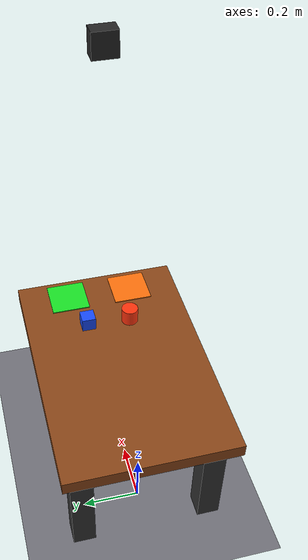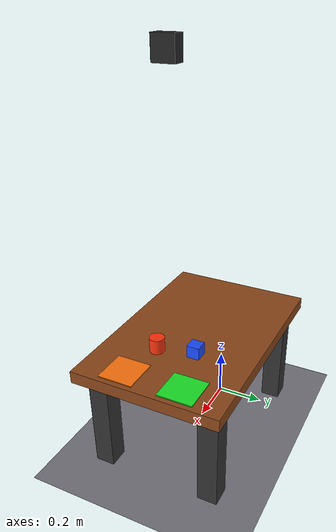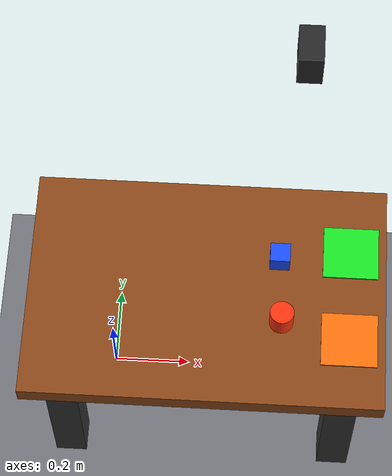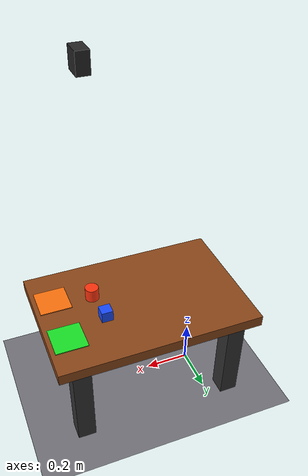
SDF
<?xml version="1.0"?>

<sdf version="1.9">

  <world name="sentinel_lab">

    <!-- Temporarily disabled until controllers are added -->
    <gravity>0 0 -9.81</gravity>

    <physics name="sentinel_physics" type="ignored">
      <max_step_size>0.001</max_step_size>
      <real_time_factor>1.0</real_time_factor>
    </physics>

    <plugin
      filename="gz-sim-physics-system"
      name="gz::sim::systems::Physics"/>

    <plugin
      filename="gz-sim-user-commands-system"
      name="gz::sim::systems::UserCommands"/>

    <plugin
      filename="gz-sim-scene-broadcaster-system"
      name="gz::sim::systems::SceneBroadcaster"/>

    <plugin
    filename="gz-sim-sensors-system"
    name="gz::sim::systems::Sensors">
    <render_engine>ogre2</render_engine>
    </plugin>

    <!-- Lighting -->
    <light type="directional" name="sun">
      <cast_shadows>true</cast_shadows>

      <pose>0 0 10 0 0 0</pose>

      <diffuse>0.8 0.8 0.8 1</diffuse>
      <specular>0.2 0.2 0.2 1</specular>

      <direction>-0.5 0.1 -0.9</direction>
    </light>

    <!-- Ground -->
    <model name="ground_plane">
      <static>true</static>

      <link name="ground_link">

        <collision name="ground_collision">
          <geometry>
            <plane>
              <normal>0 0 1</normal>
              <size>10 10</size>
            </plane>
          </geometry>
        </collision>

        <visual name="ground_visual">
          <geometry>
            <plane>
              <normal>0 0 1</normal>
              <size>10 10</size>
            </plane>
          </geometry>

          <material>
            <ambient>0.35 0.35 0.38 1</ambient>
            <diffuse>0.45 0.45 0.48 1</diffuse>
          </material>
        </visual>

      </link>
    </model>

    <!-- Fixed work table in front of the Sentinel Arm -->
    <model name="work_table">
      <static>true</static>
      <pose>0.25 0 0 0 0 0</pose>

      <link name="table_link">

        <!-- Tabletop -->
        <collision name="tabletop_collision">
          <pose>0 0 0.45 0 0 0</pose>
          <geometry>
            <box>
              <size>0.90 0.60 0.05</size>
            </box>
          </geometry>
        </collision>

        <visual name="tabletop_visual">
          <pose>0 0 0.45 0 0 0</pose>
          <geometry>
            <box>
              <size>0.90 0.60 0.05</size>
            </box>
          </geometry>
          <material>
            <ambient>0.36 0.18 0.07 1</ambient>
            <diffuse>0.55 0.28 0.10 1</diffuse>
          </material>
        </visual>

        <!-- Front-left leg -->
        <collision name="front_left_leg_collision">
          <pose>-0.35 0.23 0.2125 0 0 0</pose>
          <geometry>
            <box>
              <size>0.08 0.08 0.425</size>
            </box>
          </geometry>
        </collision>

        <visual name="front_left_leg_visual">
          <pose>-0.35 0.23 0.2125 0 0 0</pose>
          <geometry>
            <box>
              <size>0.08 0.08 0.425</size>
            </box>
          </geometry>
          <material>
            <ambient>0.12 0.12 0.12 1</ambient>
            <diffuse>0.20 0.20 0.20 1</diffuse>
          </material>
        </visual>

        <!-- Front-right leg -->
        <collision name="front_right_leg_collision">
          <pose>-0.35 -0.23 0.2125 0 0 0</pose>
          <geometry>
            <box>
              <size>0.08 0.08 0.425</size>
            </box>
          </geometry>
        </collision>

        <visual name="front_right_leg_visual">
          <pose>-0.35 -0.23 0.2125 0 0 0</pose>
          <geometry>
            <box>
              <size>0.08 0.08 0.425</size>
            </box>
          </geometry>
          <material>
            <ambient>0.12 0.12 0.12 1</ambient>
            <diffuse>0.20 0.20 0.20 1</diffuse>
          </material>
        </visual>

        <!-- Rear-left leg -->
        <collision name="rear_left_leg_collision">
          <pose>0.35 0.23 0.2125 0 0 0</pose>
          <geometry>
            <box>
              <size>0.08 0.08 0.425</size>
            </box>
          </geometry>
        </collision>

        <visual name="rear_left_leg_visual">
          <pose>0.35 0.23 0.2125 0 0 0</pose>
          <geometry>
            <box>
              <size>0.08 0.08 0.425</size>
            </box>
          </geometry>
          <material>
            <ambient>0.12 0.12 0.12 1</ambient>
            <diffuse>0.20 0.20 0.20 1</diffuse>
          </material>
        </visual>

        <!-- Rear-right leg -->
        <collision name="rear_right_leg_collision">
          <pose>0.35 -0.23 0.2125 0 0 0</pose>
          <geometry>
            <box>
              <size>0.08 0.08 0.425</size>
            </box>
          </geometry>
        </collision>

        <visual name="rear_right_leg_visual">
          <pose>0.35 -0.23 0.2125 0 0 0</pose>
          <geometry>
            <box>
              <size>0.08 0.08 0.425</size>
            </box>
          </geometry>
          <material>
            <ambient>0.12 0.12 0.12 1</ambient>
            <diffuse>0.20 0.20 0.20 1</diffuse>
          </material>
        </visual>

      </link>
    </model>

    <!-- Dynamic cube for the future pick-and-place task -->
    <model name="pickup_cube">
      <pose>0.43 0.08 0.52 0 0 0</pose>

      <link name="cube_link">
        <inertial>
          <mass>0.10</mass>
          <inertia>
            <ixx>0.000041667</ixx>
            <iyy>0.000041667</iyy>
            <izz>0.000041667</izz>
            <ixy>0</ixy>
            <ixz>0</ixz>
            <iyz>0</iyz>
          </inertia>
        </inertial>

        <collision name="cube_collision">
          <geometry>
            <box>
              <size>0.05 0.05 0.05</size>
            </box>
          </geometry>
        </collision>

        <visual name="cube_visual">
          <geometry>
            <box>
              <size>0.05 0.05 0.05</size>
            </box>
          </geometry>
          <material>
            <ambient>0.05 0.15 0.75 1</ambient>
            <diffuse>0.10 0.30 1.00 1</diffuse>
          </material>
        </visual>
      </link>
    </model>

    <!-- Destination area for the pick-and-place task -->
    <model name="placement_zone">
      <static>true</static>
      <pose>0.61 0.12 0.477 0 0 0</pose>

      <link name="placement_zone_link">
        <visual name="placement_zone_visual">
          <geometry>
            <box>
              <size>0.14 0.14 0.004</size>
            </box>
          </geometry>

          <material>
            <ambient>0.05 0.65 0.10 1</ambient>
            <diffuse>0.10 0.90 0.15 1</diffuse>
          </material>
        </visual>
      </link>
    </model>

    <!-- Orange destination zone for the triangular object -->
<model name="cylinder_sort_zone">
  <static>true</static>
  <pose>0.61 -0.12 0.477 0 0 0</pose>

  <link name="cylinder_sort_zone_link">
    <visual name="cylinder_sort_zone_visual">
      <geometry>
        <box>
          <size>0.14 0.14 0.004</size>
        </box>
      </geometry>

      <material>
        <ambient>0.90 0.35 0.05 1</ambient>
        <diffuse>1.00 0.45 0.05 1</diffuse>
      </material>
    </visual>
  </link>
</model>

<!-- Dynamic orange cylinder for the long sorting task -->
<model name="cylinder_block">
  <pose>0.44 -0.08 0.505 0 0 0</pose>
  <static>false</static>

  <link name="cylinder_link">
    <inertial>
      <mass>0.10</mass>

      <inertia>
        <ixx>0.0000525</ixx>
        <iyy>0.0000525</iyy>
        <izz>0.0000450</izz>
        <ixy>0</ixy>
        <ixz>0</ixz>
        <iyz>0</iyz>
      </inertia>
    </inertial>

    <collision name="cylinder_collision">
      <geometry>
        <cylinder>
          <radius>0.03</radius>
          <length>0.06</length>
        </cylinder>
      </geometry>
    </collision>

    <visual name="cylinder_visual">
      <geometry>
        <cylinder>
          <radius>0.03</radius>
          <length>0.06</length>
        </cylinder>
      </geometry>

      <material>
        <ambient>0.90 0.15 0.05 1</ambient>
        <diffuse>1.00 0.20 0.05 1</diffuse>
      </material>
    </visual>
  </link>
</model>

<!-- Static overhead camera used for visual shape recognition -->
<model name="overhead_camera">
  <static>true</static>
  <pose>0.45 0 1.55 0 1.5708 0</pose>

  <link name="camera_link">
    <visual name="camera_body_visual">
      <geometry>
        <box>
          <size>0.08 0.08 0.05</size>
        </box>
      </geometry>

      <material>
        <ambient>0.10 0.10 0.10 1</ambient>
        <diffuse>0.15 0.15 0.15 1</diffuse>
      </material>
    </visual>

    <sensor name="rgb_camera" type="camera">
      <always_on>true</always_on>
      <update_rate>15</update_rate>
      <visualize>true</visualize>

      <topic>/sentinel/overhead_camera/image</topic>

      <camera>
        <horizontal_fov>1.20</horizontal_fov>

        <image>
          <width>640</width>
          <height>480</height>
          <format>R8G8B8</format>
        </image>

        <clip>
          <near>0.05</near>
          <far>5.0</far>
        </clip>
      </camera>
    </sensor>
  </link>
</model>

</world>

</sdf>
